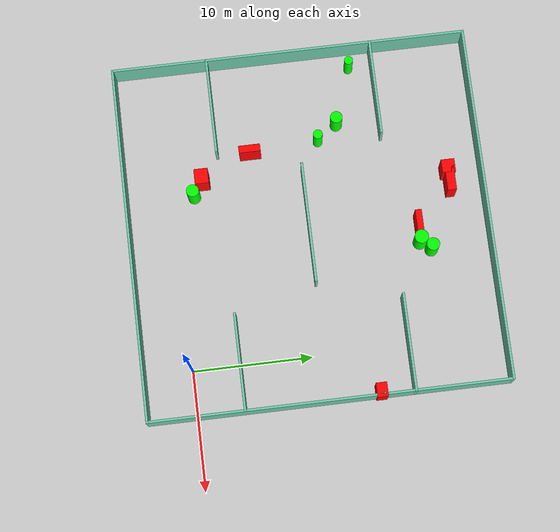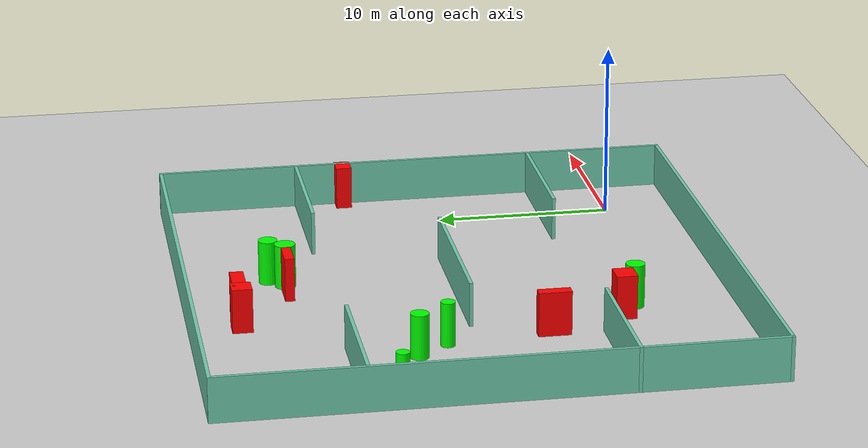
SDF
<sdf version="1.7">
 <world name="default">
  <light name="sun" type="directional">
   <pose>0 0 10 0 -0 0</pose>
   <diffuse>0.8 0.8 0.8 1</diffuse>
   <specular>0.2 0.2 0.2 1</specular>
   <attenuation>
    <range>1000</range>
    <constant>0.9</constant>
    <linear>0.01</linear>
    <quadratic>0.001</quadratic>
   </attenuation>
   <direction>-0.5 0.1 -0.9</direction>
   <spot><inner_angle>0</inner_angle><outer_angle>0</outer_angle><falloff>0</falloff></spot>
  </light>
  <model name="ground_plane">
   <static>1</static>
   <link name="link">
    <collision name="collision">
     <geometry><plane><normal>0 0 1</normal><size>100 100</size></plane></geometry>
     <surface>
      <contact><collide_bitmask>65535</collide_bitmask></contact>
      <friction><ode><mu>100</mu><mu2>50</mu2></ode></friction>
     </surface>
    </collision>
    <visual name="visual">
     <cast_shadows>0</cast_shadows>
     <geometry><plane><normal>0 0 1</normal><size>100 100</size></plane></geometry>
     <material>
      <script><uri>file://media/materials/scripts/gazebo.material</uri><name>Gazebo/Grey</name></script>
     </material>
    </visual>
   </link>
  </model>
  <gravity>0 0 -9.8</gravity>
  <magnetic_field>6e-06 2.3e-05 -4.2e-05</magnetic_field>
  <atmosphere type="adiabatic"/>
  <physics type="ode">
   <max_step_size>0.001</max_step_size>
   <real_time_factor>1</real_time_factor>
   <real_time_update_rate>1000</real_time_update_rate>
  </physics>
  <scene><ambient>0.4 0.4 0.4 1</ambient><background>0.7 0.7 0.7 1</background><shadows>1</shadows></scene>
  <spherical_coordinates>
   <surface_model>EARTH_WGS84</surface_model>
   <latitude_deg>0</latitude_deg>
   <longitude_deg>0</longitude_deg>
   <elevation>0</elevation>
   <heading_deg>0</heading_deg>
  </spherical_coordinates>
  <model name="my_base_walls">
   <link name="Wall_10">
    <collision name="Wall_10_Collision">
     <geometry><box><size>8.2 0.2 2.5</size></box></geometry>
     <pose>0 0 1.25 0 -0 0</pose>
    </collision>
    <visual name="Wall_10_Visual">
     <pose>0 0 1.25 0 -0 0</pose>
     <geometry><box><size>8.2 0.2 2.5</size></box></geometry>
     <material>
      <script><uri>file://media/materials/scripts/gazebo.material</uri><name>Gazebo/Grey</name></script>
      <ambient>0.435294 0.796078 0.67451 1</ambient>
     </material>
     <meta><layer>0</layer></meta>
    </visual>
    <pose>-11 -7 0 0 -0 0</pose>
   </link>
   <link name="Wall_12">
    <collision name="Wall_12_Collision">
     <geometry><box><size>8.2 0.2 2.5</size></box></geometry>
     <pose>0 0 1.25 0 -0 0</pose>
    </collision>
    <visual name="Wall_12_Visual">
     <pose>0 0 1.25 0 -0 0</pose>
     <geometry><box><size>8.2 0.2 2.5</size></box></geometry>
     <material>
      <script><uri>file://media/materials/scripts/gazebo.material</uri><name>Gazebo/Grey</name></script>
      <ambient>0.435294 0.796078 0.67451 1</ambient>
     </material>
     <meta><layer>0</layer></meta>
    </visual>
    <pose>-11 7 0 0 -0 0</pose>
   </link>
   <link name="Wall_14">
    <collision name="Wall_14_Collision">
     <geometry><box><size>8.2 0.2 2.5</size></box></geometry>
     <pose>0 0 1.25 0 -0 0</pose>
    </collision>
    <visual name="Wall_14_Visual">
     <pose>0 0 1.25 0 -0 0</pose>
     <geometry><box><size>8.2 0.2 2.5</size></box></geometry>
     <material>
      <script><uri>file://media/materials/scripts/gazebo.material</uri><name>Gazebo/Grey</name></script>
      <ambient>0.435294 0.796078 0.67451 1</ambient>
     </material>
     <meta><layer>0</layer></meta>
    </visual>
    <pose>11 7 0 0 -0 3.14159</pose>
   </link>
   <link name="Wall_16">
    <collision name="Wall_16_Collision">
     <geometry><box><size>10.2 0.2 2.5</size></box></geometry>
     <pose>0 0 1.25 0 -0 0</pose>
    </collision>
    <visual name="Wall_16_Visual">
     <pose>0 0 1.25 0 -0 0</pose>
     <geometry><box><size>10.2 0.2 2.5</size></box></geometry>
     <material>
      <script><uri>file://media/materials/scripts/gazebo.material</uri><name>Gazebo/Grey</name></script>
      <ambient>0.435294 0.796078 0.67451 1</ambient>
     </material>
     <meta><layer>0</layer></meta>
    </visual>
    <pose>0 0 0 0 -0 3.14159</pose>
   </link>
   <link name="Wall_2">
    <collision name="Wall_2_Collision">
     <geometry><box><size>30.2 0.2 2.5</size></box></geometry>
     <pose>0 0 1.25 0 -0 0</pose>
    </collision>
    <visual name="Wall_2_Visual">
     <pose>0 0 1.25 0 -0 0</pose>
     <geometry><box><size>30.2 0.2 2.5</size></box></geometry>
     <material>
      <script><uri>file://media/materials/scripts/gazebo.material</uri><name>Gazebo/Grey</name></script>
      <ambient>0.435294 0.796078 0.67451 1</ambient>
     </material>
     <meta><layer>0</layer></meta>
    </visual>
    <pose>0 -15 0 0 -0 3.14159</pose>
   </link>
   <link name="Wall_3">
    <collision name="Wall_3_Collision">
     <geometry><box><size>30.2 0.2 2.5</size></box></geometry>
     <pose>0 0 1.25 0 -0 0</pose>
    </collision>
    <visual name="Wall_3_Visual">
     <pose>0 0 1.25 0 -0 0</pose>
     <geometry><box><size>30.2 0.2 2.5</size></box></geometry>
     <material>
      <script><uri>file://media/materials/scripts/gazebo.material</uri><name>Gazebo/Grey</name></script>
      <ambient>0.435294 0.796078 0.67451 1</ambient>
     </material>
     <meta><layer>0</layer></meta>
    </visual>
    <pose>-15 0 0 0 -0 1.5708</pose>
   </link>
   <link name="Wall_4">
    <collision name="Wall_4_Collision">
     <geometry><box><size>30.2 0.2 2.5</size></box></geometry>
     <pose>0 0 1.25 0 -0 0</pose>
    </collision>
    <visual name="Wall_4_Visual">
     <pose>0 0 1.25 0 -0 0</pose>
     <geometry><box><size>30.2 0.2 2.5</size></box></geometry>
     <material>
      <script><uri>file://media/materials/scripts/gazebo.material</uri><name>Gazebo/Grey</name></script>
      <ambient>0.435294 0.796078 0.67451 1</ambient>
     </material>
     <meta><layer>0</layer></meta>
    </visual>
    <pose>0 15 0 0 -0 0</pose>
   </link>
   <link name="Wall_6">
    <collision name="Wall_6_Collision">
     <geometry><box><size>30.2 0.2 2.5</size></box></geometry>
     <pose>0 0 1.25 0 -0 0</pose>
    </collision>
    <visual name="Wall_6_Visual">
     <pose>0 0 1.25 0 -0 0</pose>
     <geometry><box><size>30.2 0.2 2.5</size></box></geometry>
     <material>
      <script><uri>file://media/materials/scripts/gazebo.material</uri><name>Gazebo/Grey</name></script>
      <ambient>0.435294 0.796078 0.67451 1</ambient>
     </material>
     <meta><layer>0</layer></meta>
    </visual>
    <pose>15 0 0 0 -0 1.5708</pose>
   </link>
   <link name="Wall_8">
    <collision name="Wall_8_Collision">
     <geometry><box><size>8.2 0.2 2.5</size></box></geometry>
     <pose>0 0 1.25 0 -0 0</pose>
    </collision>
    <visual name="Wall_8_Visual">
     <pose>0 0 1.25 0 -0 0</pose>
     <geometry><box><size>8.2 0.2 2.5</size></box></geometry>
     <material>
      <script><uri>file://media/materials/scripts/gazebo.material</uri><name>Gazebo/Grey</name></script>
      <ambient>0.435294 0.796078 0.67451 1</ambient>
     </material>
     <meta><layer>0</layer></meta>
    </visual>
    <pose>11 -7 0 0 -0 3.14159</pose>
   </link>
   <static>1</static>
   <pose>-11 11 0 0 -0 0</pose>
  </model>
  <model name="cylinder1">
   <static>1</static>
   <link name="link">
    <inertial>
     <mass>1</mass>
     <inertia><ixx>0.5</ixx><ixy>0</ixy><ixz>0</ixz><iyy>0.5</iyy><iyz>0</iyz><izz>1</izz></inertia>
    </inertial>
    <collision name="collision">
     <geometry><cylinder><radius>0.5420188083189829</radius><length>2.5</length></cylinder></geometry>
    </collision>
    <visual name="visual">
     <geometry><cylinder><radius>0.5420188083189829</radius><length>2.5</length></cylinder></geometry>
     <material>
      <ambient>0 1 0 1</ambient>
      <diffuse>0 1 0 1</diffuse>
      <specular>0.1 0.1 0.1 1</specular>
      <emissive>0 0 0 0</emissive>
     </material>
    </visual>
   </link>
   <pose>-7.865583352025942 21.015364905283974 1.25 0 0 0</pose>
  </model>
  <model name="cylinder2">
   <static>1</static>
   <link name="link">
    <inertial>
     <mass>1</mass>
     <inertia><ixx>0.5</ixx><ixy>0</ixy><ixz>0</ixz><iyy>0.5</iyy><iyz>0</iyz><izz>1</izz></inertia>
    </inertial>
    <collision name="collision">
     <geometry><cylinder><radius>0.3982062166108823</radius><length>2.5</length></cylinder></geometry>
    </collision>
    <visual name="visual">
     <geometry><cylinder><radius>0.3982062166108823</radius><length>2.5</length></cylinder></geometry>
     <material>
      <ambient>0 1 0 1</ambient>
      <diffuse>0 1 0 1</diffuse>
      <specular>0.1 0.1 0.1 1</specular>
      <emissive>0 0 0 0</emissive>
     </material>
    </visual>
   </link>
   <pose>-18.388506015344834 12.649503064253741 1.25 0 0 0</pose>
  </model>
  <model name="cylinder3">
   <static>1</static>
   <link name="link">
    <inertial>
     <mass>1</mass>
     <inertia><ixx>0.5</ixx><ixy>0</ixy><ixz>0</ixz><iyy>0.5</iyy><iyz>0</iyz><izz>1</izz></inertia>
    </inertial>
    <collision name="collision">
     <geometry><cylinder><radius>0.5852676852505717</radius><length>2.5</length></cylinder></geometry>
    </collision>
    <visual name="visual">
     <geometry><cylinder><radius>0.5852676852505717</radius><length>2.5</length></cylinder></geometry>
     <material>
      <ambient>0 1 0 1</ambient>
      <diffuse>0 1 0 1</diffuse>
      <specular>0.1 0.1 0.1 1</specular>
      <emissive>0 0 0 0</emissive>
     </material>
    </visual>
   </link>
   <pose>-8.613634149354523 20.150702210662153 1.25 0 0 0</pose>
  </model>
  <model name="cylinder4">
   <static>1</static>
   <link name="link">
    <inertial>
     <mass>1</mass>
     <inertia><ixx>0.5</ixx><ixy>0</ixy><ixz>0</ixz><iyy>0.5</iyy><iyz>0</iyz><izz>1</izz></inertia>
    </inertial>
    <collision name="collision">
     <geometry><cylinder><radius>0.36364231507862405</radius><length>2.5</length></cylinder></geometry>
    </collision>
    <visual name="visual">
     <geometry><cylinder><radius>0.36364231507862405</radius><length>2.5</length></cylinder></geometry>
     <material>
      <ambient>0 1 0 1</ambient>
      <diffuse>0 1 0 1</diffuse>
      <specular>0.1 0.1 0.1 1</specular>
      <emissive>0 0 0 0</emissive>
     </material>
    </visual>
   </link>
   <pose>-24.562548080210735 16.02960242407176 1.25 0 0 0</pose>
  </model>
  <model name="cylinder5">
   <static>1</static>
   <link name="link">
    <inertial>
     <mass>1</mass>
     <inertia><ixx>0.5</ixx><ixy>0</ixy><ixz>0</ixz><iyy>0.5</iyy><iyz>0</iyz><izz>1</izz></inertia>
    </inertial>
    <collision name="collision">
     <geometry><cylinder><radius>0.5329358047309591</radius><length>2.5</length></cylinder></geometry>
    </collision>
    <visual name="visual">
     <geometry><cylinder><radius>0.5329358047309591</radius><length>2.5</length></cylinder></geometry>
     <material>
      <ambient>0 1 0 1</ambient>
      <diffuse>0 1 0 1</diffuse>
      <specular>0.1 0.1 0.1 1</specular>
      <emissive>0 0 0 0</emissive>
     </material>
    </visual>
   </link>
   <pose>-14.768384379165415 1.6745627399541636 1.25 0 0 0</pose>
  </model>
  <model name="cylinder6">
   <static>1</static>
   <link name="link">
    <inertial>
     <mass>1</mass>
     <inertia><ixx>0.5</ixx><ixy>0</ixy><ixz>0</ixz><iyy>0.5</iyy><iyz>0</iyz><izz>1</izz></inertia>
    </inertial>
    <collision name="collision">
     <geometry><cylinder><radius>0.507417701962317</radius><length>2.5</length></cylinder></geometry>
    </collision>
    <visual name="visual">
     <geometry><cylinder><radius>0.507417701962317</radius><length>2.5</length></cylinder></geometry>
     <material>
      <ambient>0 1 0 1</ambient>
      <diffuse>0 1 0 1</diffuse>
      <specular>0.1 0.1 0.1 1</specular>
      <emissive>0 0 0 0</emissive>
     </material>
    </visual>
   </link>
   <pose>-19.692178682409413 14.37606160253559 1.25 0 0 0</pose>
  </model>
  <model name="box1">
   <static>1</static>
   <link name="link">
    <inertial>
     <mass>1</mass>
     <inertia><ixx>0.083</ixx><ixy>0</ixy><ixz>0</ixz><iyy>0.083</iyy><iyz>0</iyz><izz>0.083</izz></inertia>
    </inertial>
    <collision name="collision">
     <geometry><box><size>1.7999691094867112 0.5344091311746888 2.5</size></box></geometry>
    </collision>
    <visual name="visual">
     <geometry><box><size>1.7999691094867112 0.5344091311746888 2.5</size></box></geometry>
     <material>
      <ambient>1 0 0 1</ambient>
      <diffuse>1 0 0 1</diffuse>
      <specular>0.1 0.1 0.1 1</specular>
      <emissive>0 0 0 0</emissive>
     </material>
    </visual>
    <sensor name="my_contact" type="contact">
     <contact><collision>box_collision</collision><topic>__default_topic__</topic></contact>
    </sensor>
   </link>
   <pose>-10.024369355115978 20.161358061107407 1.25 0 0 0</pose>
  </model>
  <model name="box2">
   <static>1</static>
   <link name="link">
    <inertial>
     <mass>1</mass>
     <inertia><ixx>0.083</ixx><ixy>0</ixy><ixz>0</ixz><iyy>0.083</iyy><iyz>0</iyz><izz>0.083</izz></inertia>
    </inertial>
    <collision name="collision">
     <geometry><box><size>1.108524296285951 1.1151729323090052 2.5</size></box></geometry>
    </collision>
    <visual name="visual">
     <geometry><box><size>1.108524296285951 1.1151729323090052 2.5</size></box></geometry>
     <material>
      <ambient>1 0 0 1</ambient>
      <diffuse>1 0 0 1</diffuse>
      <specular>0.1 0.1 0.1 1</specular>
      <emissive>0 0 0 0</emissive>
     </material>
    </visual>
    <sensor name="my_contact" type="contact">
     <contact><collision>box_collision</collision><topic>__default_topic__</topic></contact>
    </sensor>
   </link>
   <pose>-14.375632510691757 23.17660544698832 1.25 0 0 0</pose>
  </model>
  <model name="box3">
   <static>1</static>
   <link name="link">
    <inertial>
     <mass>1</mass>
     <inertia><ixx>0.083</ixx><ixy>0</ixy><ixz>0</ixz><iyy>0.083</iyy><iyz>0</iyz><izz>0.083</izz></inertia>
    </inertial>
    <collision name="collision">
     <geometry><box><size>2.095232590826922 0.7534031571113422 2.5</size></box></geometry>
    </collision>
    <visual name="visual">
     <geometry><box><size>2.095232590826922 0.7534031571113422 2.5</size></box></geometry>
     <material>
      <ambient>1 0 0 1</ambient>
      <diffuse>1 0 0 1</diffuse>
      <specular>0.1 0.1 0.1 1</specular>
      <emissive>0 0 0 0</emissive>
     </material>
    </visual>
    <sensor name="my_contact" type="contact">
     <contact><collision>box_collision</collision><topic>__default_topic__</topic></contact>
    </sensor>
   </link>
   <pose>-13.30665232104636 23.22921146368506 1.25 0 0 0</pose>
  </model>
  <model name="box4">
   <static>1</static>
   <link name="link">
    <inertial>
     <mass>1</mass>
     <inertia><ixx>0.083</ixx><ixy>0</ixy><ixz>0</ixz><iyy>0.083</iyy><iyz>0</iyz><izz>0.083</izz></inertia>
    </inertial>
    <collision name="collision">
     <geometry><box><size>0.6183749043117986 1.818736288682714 2.5</size></box></geometry>
    </collision>
    <visual name="visual">
     <geometry><box><size>0.6183749043117986 1.818736288682714 2.5</size></box></geometry>
     <material>
      <ambient>1 0 0 1</ambient>
      <diffuse>1 0 0 1</diffuse>
      <specular>0.1 0.1 0.1 1</specular>
      <emissive>0 0 0 0</emissive>
     </material>
    </visual>
    <sensor name="my_contact" type="contact">
     <contact><collision>box_collision</collision><topic>__default_topic__</topic></contact>
    </sensor>
   </link>
   <pose>-17.844197145602337 6.79471495769017 1.25 0 0 0</pose>
  </model>
  <model name="box5">
   <static>1</static>
   <link name="link">
    <inertial>
     <mass>1</mass>
     <inertia><ixx>0.083</ixx><ixy>0</ixy><ixz>0</ixz><iyy>0.083</iyy><iyz>0</iyz><izz>0.083</izz></inertia>
    </inertial>
    <collision name="collision">
     <geometry><box><size>1.1849462776871835 0.9009649309495248 2.5</size></box></geometry>
    </collision>
    <visual name="visual">
     <geometry><box><size>1.1849462776871835 0.9009649309495248 2.5</size></box></geometry>
     <material>
      <ambient>1 0 0 1</ambient>
      <diffuse>1 0 0 1</diffuse>
      <specular>0.1 0.1 0.1 1</specular>
      <emissive>0 0 0 0</emissive>
     </material>
    </visual>
    <sensor name="my_contact" type="contact">
     <contact><collision>box_collision</collision><topic>__default_topic__</topic></contact>
    </sensor>
   </link>
   <pose>3.6338973758565665 15.245423279862681 1.25 0 0 0</pose>
  </model>
  <model name="box6">
   <static>1</static>
   <link name="link">
    <inertial>
     <mass>1</mass>
     <inertia><ixx>0.083</ixx><ixy>0</ixy><ixz>0</ixz><iyy>0.083</iyy><iyz>0</iyz><izz>0.083</izz></inertia>
    </inertial>
    <collision name="collision">
     <geometry><box><size>1.2737663432472486 1.1631730507438205 2.5</size></box></geometry>
    </collision>
    <visual name="visual">
     <geometry><box><size>1.2737663432472486 1.1631730507438205 2.5</size></box></geometry>
     <material>
      <ambient>1 0 0 1</ambient>
      <diffuse>1 0 0 1</diffuse>
      <specular>0.1 0.1 0.1 1</specular>
      <emissive>0 0 0 0</emissive>
     </material>
    </visual>
    <sensor name="my_contact" type="contact">
     <contact><collision>box_collision</collision><topic>__default_topic__</topic></contact>
    </sensor>
   </link>
   <pose>-15.946008973149894 2.522253215684005 1.25 0 0 0</pose>
  </model>
 </world>
</sdf>
